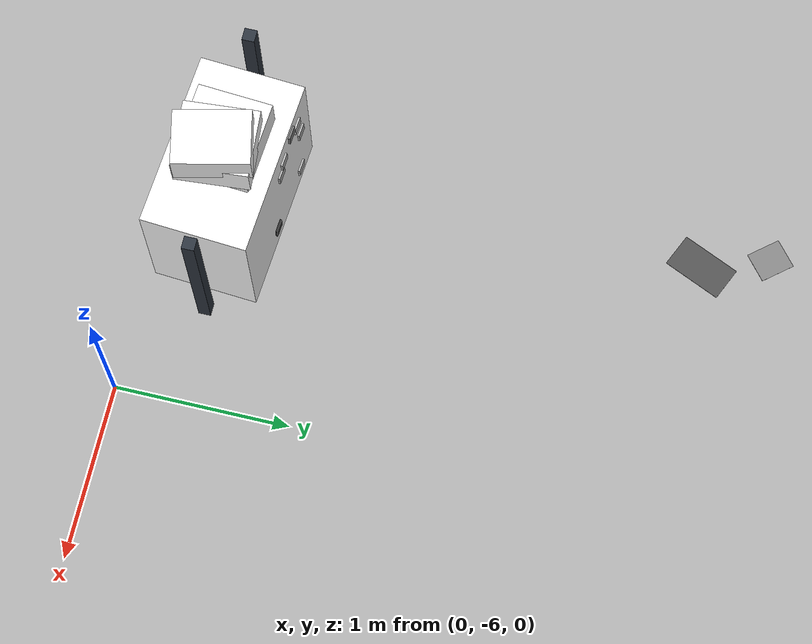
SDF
<sdf version="1.9">
 <world name="warehouse_irregular">
  <model name="concrete_patch_13">
   <static>true</static>
   <pose>-1.5708928783646314 -2.5940814569195076 0.0006 0 0 -0.8808935604553811</pose>
   <link name="body">
    <visual name="surface">
     <geometry><box><size>0.20035579361307604 0.174697899184013 0.001</size></box></geometry>
     <material>
      <ambient>0.5231804011164841 0.5231804011164841 0.5231804011164841 1</ambient>
      <diffuse>0.5231804011164841 0.5231804011164841 0.5231804011164841 1</diffuse>
     </material>
    </visual>
   </link>
  </model>
  <model name="concrete_patch_45">
   <static>true</static>
   <pose>-1.4433807541568502 -2.9665197919562694 0.0006 0 0 1.150385775311153</pose>
   <link name="body">
    <visual name="surface">
     <geometry><box><size>0.3462991568391786 0.19943941239512905 0.001</size></box></geometry>
     <material>
      <ambient>0.32397237541888785 0.32397237541888785 0.32397237541888785 1</ambient>
      <diffuse>0.32397237541888785 0.32397237541888785 0.32397237541888785 1</diffuse>
     </material>
    </visual>
   </link>
  </model>
  <model name="cabinet_31">
   <static>true</static>
   <pose>-1.1839621242322722 -5.626420382213984 0.40056571346470565 0 0 -0.07269812002518672</pose>
   <link name="body">
    <visual name="surface">
     <geometry><box><size>1 0.6 0.8011314269294113</size></box></geometry>
     <material>
      <ambient>1 1 1 1</ambient>
      <diffuse>1 1 1 1</diffuse>
      <pbr>
       <metal>
        <albedo_map>model://feature_warehouse_materials/textures/storage_31.png</albedo_map>
        <roughness>.9</roughness>
        <metalness>0</metalness>
       </metal>
      </pbr>
     </material>
    </visual>
    <collision name="solid"><geometry><box><size>1 0.6 0.8011314269294113</size></box></geometry></collision>
   </link>
  </model>
  <model name="panel_31_0_-1">
   <static>true</static>
   <pose>-1.444836858637492 -5.913229542055388 0.7257125895624099 0 0 -0.07269812002518672</pose>
   <link name="body">
    <visual name="surface">
     <geometry><box><size>0.08 0.012 0.065</size></box></geometry>
     <material>
      <ambient>0.25343817390018336 0.25343817390018336 0.25343817390018336 1</ambient>
      <diffuse>0.25343817390018336 0.25343817390018336 0.25343817390018336 1</diffuse>
     </material>
    </visual>
   </link>
  </model>
  <model name="panel_31_0_1">
   <static>true</static>
   <pose>-1.4005300565302172 -5.304840762337166 0.7257125895624099 0 0 -0.07269812002518672</pose>
   <link name="body">
    <visual name="surface">
     <geometry><box><size>0.08 0.012 0.065</size></box></geometry>
     <material>
      <ambient>0.49050678941221926 0.49050678941221926 0.49050678941221926 1</ambient>
      <diffuse>0.49050678941221926 0.49050678941221926 0.49050678941221926 1</diffuse>
     </material>
    </visual>
   </link>
  </model>
  <model name="panel_31_1_-1">
   <static>true</static>
   <pose>-1.5309297111884448 -5.906959704234591 0.6618971434295059 0 0 -0.07269812002518672</pose>
   <link name="body">
    <visual name="surface">
     <geometry><box><size>0.08 0.012 0.065</size></box></geometry>
     <material>
      <ambient>0.18405923406868308 0.18405923406868308 0.18405923406868308 1</ambient>
      <diffuse>0.18405923406868308 0.18405923406868308 0.18405923406868308 1</diffuse>
     </material>
    </visual>
   </link>
  </model>
  <model name="panel_31_1_1">
   <static>true</static>
   <pose>-1.48662290908117 -5.29857092451637 0.6618971434295059 0 0 -0.07269812002518672</pose>
   <link name="body">
    <visual name="surface">
     <geometry><box><size>0.08 0.012 0.065</size></box></geometry>
     <material>
      <ambient>0.7571163204372492 0.7571163204372492 0.7571163204372492 1</ambient>
      <diffuse>0.7571163204372492 0.7571163204372492 0.7571163204372492 1</diffuse>
     </material>
    </visual>
   </link>
  </model>
  <model name="panel_31_2_-1">
   <static>true</static>
   <pose>-1.5675034942650667 -5.904296165025599 0.5017914262901163 0 0 -0.07269812002518672</pose>
   <link name="body">
    <visual name="surface">
     <geometry><box><size>0.08 0.012 0.065</size></box></geometry>
     <material>
      <ambient>0.7644292730134559 0.7644292730134559 0.7644292730134559 1</ambient>
      <diffuse>0.7644292730134559 0.7644292730134559 0.7644292730134559 1</diffuse>
     </material>
    </visual>
   </link>
  </model>
  <model name="panel_31_2_1">
   <static>true</static>
   <pose>-1.523196692157792 -5.295907385307378 0.5017914262901163 0 0 -0.07269812002518672</pose>
   <link name="body">
    <visual name="surface">
     <geometry><box><size>0.08 0.012 0.065</size></box></geometry>
     <material>
      <ambient>0.6922307167121414 0.6922307167121414 0.6922307167121414 1</ambient>
      <diffuse>0.6922307167121414 0.6922307167121414 0.6922307167121414 1</diffuse>
     </material>
    </visual>
   </link>
  </model>
  <model name="panel_31_3_-1">
   <static>true</static>
   <pose>-1.3079483896260344 -5.923198644888067 0.66333273621407 0 0 -0.07269812002518672</pose>
   <link name="body">
    <visual name="surface">
     <geometry><box><size>0.08 0.012 0.065</size></box></geometry>
     <material>
      <ambient>0.5652385732214219 0.5652385732214219 0.5652385732214219 1</ambient>
      <diffuse>0.5652385732214219 0.5652385732214219 0.5652385732214219 1</diffuse>
     </material>
    </visual>
   </link>
  </model>
  <model name="panel_31_3_1">
   <static>true</static>
   <pose>-1.2636415875187597 -5.3148098651698445 0.66333273621407 0 0 -0.07269812002518672</pose>
   <link name="body">
    <visual name="surface">
     <geometry><box><size>0.08 0.012 0.065</size></box></geometry>
     <material>
      <ambient>0.714975782867292 0.714975782867292 0.714975782867292 1</ambient>
      <diffuse>0.714975782867292 0.714975782867292 0.714975782867292 1</diffuse>
     </material>
    </visual>
   </link>
  </model>
  <model name="panel_31_4_-1">
   <static>true</static>
   <pose>-1.1189681797812014 -5.936961404884502 0.1465270290442017 0 0 -0.07269812002518672</pose>
   <link name="body">
    <visual name="surface">
     <geometry><box><size>0.08 0.012 0.065</size></box></geometry>
     <material>
      <ambient>0.23986041481143888 0.23986041481143888 0.23986041481143888 1</ambient>
      <diffuse>0.23986041481143888 0.23986041481143888 0.23986041481143888 1</diffuse>
     </material>
    </visual>
   </link>
  </model>
  <model name="panel_31_4_1">
   <static>true</static>
   <pose>-1.0746613776739267 -5.328572625166281 0.1465270290442017 0 0 -0.07269812002518672</pose>
   <link name="body">
    <visual name="surface">
     <geometry><box><size>0.08 0.012 0.065</size></box></geometry>
     <material>
      <ambient>0.17463926468029076 0.17463926468029076 0.17463926468029076 1</ambient>
      <diffuse>0.17463926468029076 0.17463926468029076 0.17463926468029076 1</diffuse>
     </material>
    </visual>
   </link>
  </model>
  <model name="panel_31_5_-1">
   <static>true</static>
   <pose>-1.5137333331736982 -5.908212055597833 0.12905377262446965 0 0 -0.07269812002518672</pose>
   <link name="body">
    <visual name="surface">
     <geometry><box><size>0.08 0.012 0.065</size></box></geometry>
     <material>
      <ambient>0.5035455068311085 0.5035455068311085 0.5035455068311085 1</ambient>
      <diffuse>0.5035455068311085 0.5035455068311085 0.5035455068311085 1</diffuse>
     </material>
    </visual>
   </link>
  </model>
  <model name="panel_31_5_1">
   <static>true</static>
   <pose>-1.4694265310664232 -5.2998232758796116 0.12905377262446965 0 0 -0.07269812002518672</pose>
   <link name="body">
    <visual name="surface">
     <geometry><box><size>0.08 0.012 0.065</size></box></geometry>
     <material>
      <ambient>0.7093591704008297 0.7093591704008297 0.7093591704008297 1</ambient>
      <diffuse>0.7093591704008297 0.7093591704008297 0.7093591704008297 1</diffuse>
     </material>
    </visual>
   </link>
  </model>
  <model name="panel_31_6_-1">
   <static>true</static>
   <pose>-1.2535411387870865 -5.927160932452342 0.6027708692024891 0 0 -0.07269812002518672</pose>
   <link name="body">
    <visual name="surface">
     <geometry><box><size>0.08 0.012 0.065</size></box></geometry>
     <material>
      <ambient>0.2926744757451223 0.2926744757451223 0.2926744757451223 1</ambient>
      <diffuse>0.2926744757451223 0.2926744757451223 0.2926744757451223 1</diffuse>
     </material>
    </visual>
   </link>
  </model>
  <model name="panel_31_6_1">
   <static>true</static>
   <pose>-1.2092343366798117 -5.31877215273412 0.6027708692024891 0 0 -0.07269812002518672</pose>
   <link name="body">
    <visual name="surface">
     <geometry><box><size>0.08 0.012 0.065</size></box></geometry>
     <material>
      <ambient>0.6953003063819883 0.6953003063819883 0.6953003063819883 1</ambient>
      <diffuse>0.6953003063819883 0.6953003063819883 0.6953003063819883 1</diffuse>
     </material>
    </visual>
   </link>
  </model>
  <model name="carton_31_0">
   <static>true</static>
   <pose>-1.2243658887645787 -5.626420382213984 0.9011314269294113 0 0 -0.07269812002518672</pose>
   <link name="body">
    <visual name="surface">
     <geometry><box><size>0.45 0.42 0.18</size></box></geometry>
     <material>
      <ambient>1 1 1 1</ambient>
      <diffuse>1 1 1 1</diffuse>
      <pbr>
       <metal>
        <albedo_map>model://feature_warehouse_materials/textures/storage_31.png</albedo_map>
        <roughness>.9</roughness>
        <metalness>0</metalness>
       </metal>
      </pbr>
     </material>
    </visual>
    <collision name="solid"><geometry><box><size>0.45 0.42 0.18</size></box></geometry></collision>
   </link>
  </model>
  <model name="carton_31_1">
   <static>true</static>
   <pose>-1.128819456108103 -5.626420382213984 1.0211314269294114 0 0 0.07730187997481328</pose>
   <link name="body">
    <visual name="surface">
     <geometry><box><size>0.38 0.42 0.18</size></box></geometry>
     <material>
      <ambient>1 1 1 1</ambient>
      <diffuse>1 1 1 1</diffuse>
      <pbr>
       <metal>
        <albedo_map>model://feature_warehouse_materials/textures/storage_31.png</albedo_map>
        <roughness>.9</roughness>
        <metalness>0</metalness>
       </metal>
      </pbr>
     </material>
    </visual>
    <collision name="solid"><geometry><box><size>0.38 0.42 0.18</size></box></geometry></collision>
   </link>
  </model>
  <model name="carton_31_2">
   <static>true</static>
   <pose>-1.0839709382215454 -5.626420382213984 1.1411314269294113 0 0 0.22730187997481327</pose>
   <link name="body">
    <visual name="surface">
     <geometry><box><size>0.31 0.42 0.18</size></box></geometry>
     <material>
      <ambient>1 1 1 1</ambient>
      <diffuse>1 1 1 1</diffuse>
      <pbr>
       <metal>
        <albedo_map>model://feature_warehouse_materials/textures/storage_31.png</albedo_map>
        <roughness>.9</roughness>
        <metalness>0</metalness>
       </metal>
      </pbr>
     </material>
    </visual>
    <collision name="solid"><geometry><box><size>0.31 0.42 0.18</size></box></geometry></collision>
   </link>
  </model>
  <model name="post_31_-1">
   <static>true</static>
   <pose>-1.8039621242322723 -5.626420382213984 0.5 0 0 0</pose>
   <link name="body">
    <visual name="surface">
     <geometry><box><size>0.07 0.07 1</size></box></geometry>
     <material><ambient>0.18 0.21 0.25 1</ambient><diffuse>0.18 0.21 0.25 1</diffuse></material>
    </visual>
    <collision name="solid"><geometry><box><size>0.07 0.07 1</size></box></geometry></collision>
   </link>
  </model>
  <model name="post_31_1">
   <static>true</static>
   <pose>-0.5639621242322722 -5.626420382213984 0.5 0 0 0</pose>
   <link name="body">
    <visual name="surface">
     <geometry><box><size>0.07 0.07 1</size></box></geometry>
     <material><ambient>0.18 0.21 0.25 1</ambient><diffuse>0.18 0.21 0.25 1</diffuse></material>
    </visual>
    <collision name="solid"><geometry><box><size>0.07 0.07 1</size></box></geometry></collision>
   </link>
  </model>
 </world>
</sdf>
